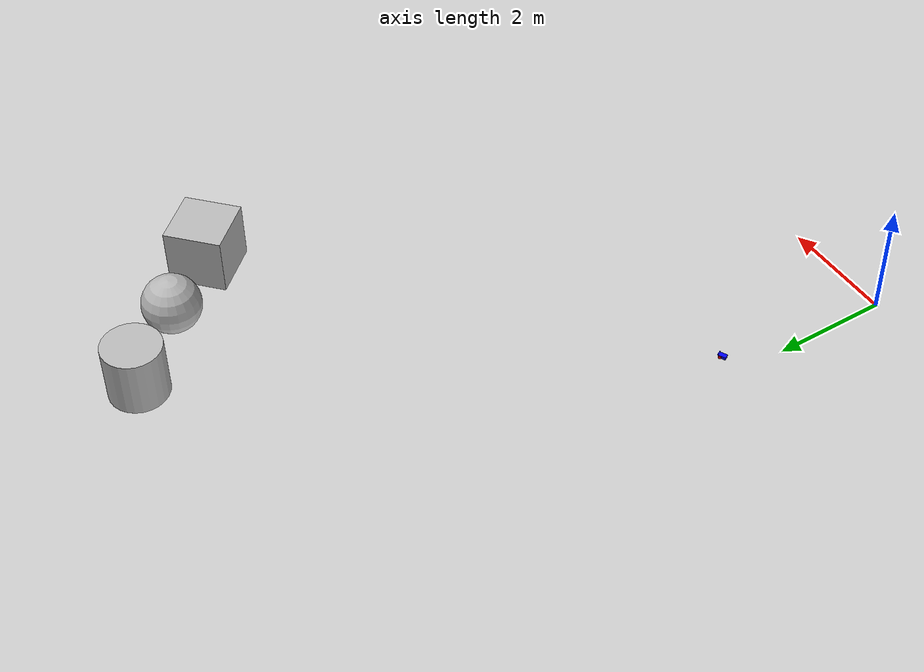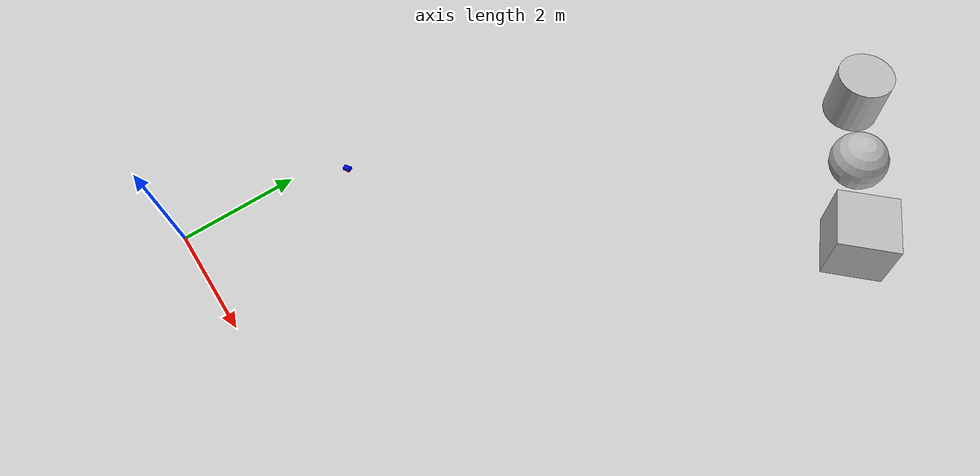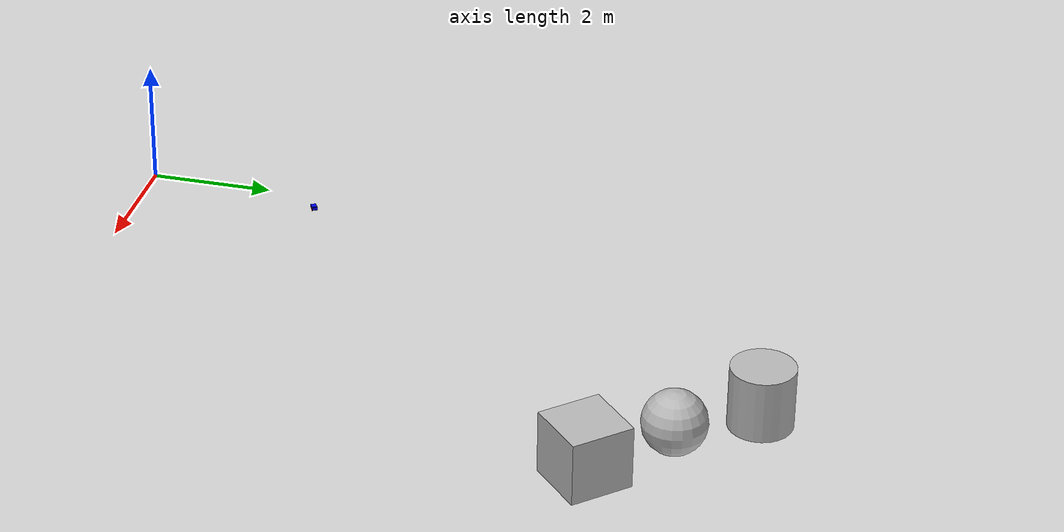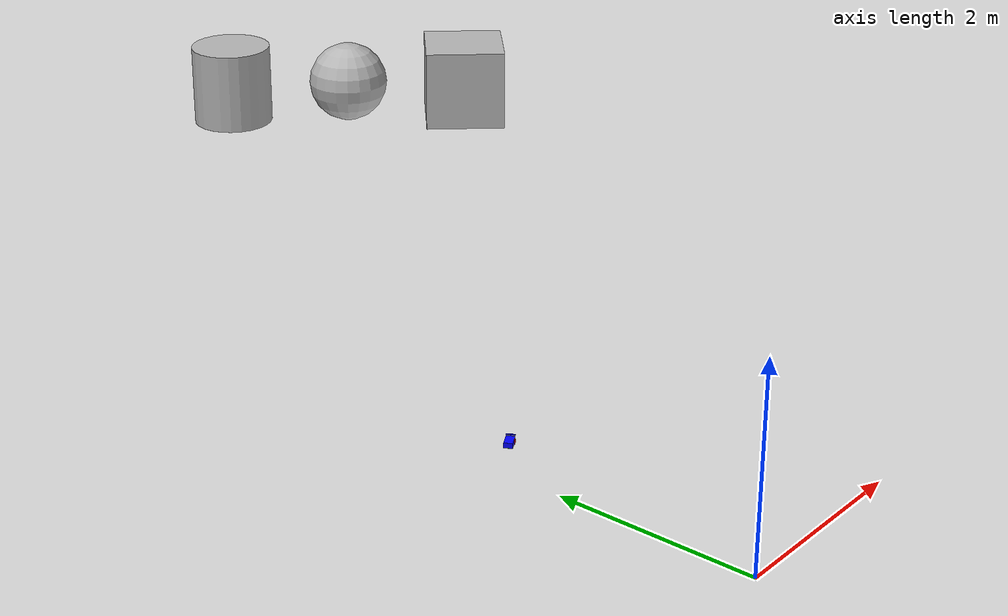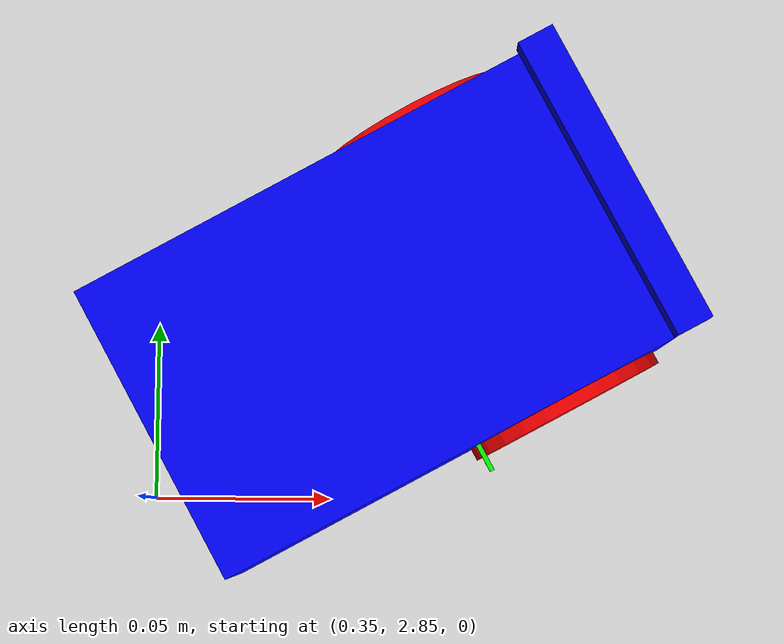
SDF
<sdf version="1.7">
 <world name="default">
  <light name="sun" type="directional">
   <pose>0 0 10 0 -0 0</pose>
   <diffuse>0.8 0.8 0.8 1</diffuse>
   <specular>0.2 0.2 0.2 1</specular>
   <attenuation>
    <range>1000</range>
    <constant>0.9</constant>
    <linear>0.01</linear>
    <quadratic>0.001</quadratic>
   </attenuation>
   <direction>-0.5 0.1 -0.9</direction>
   <spot><inner_angle>0</inner_angle><outer_angle>0</outer_angle><falloff>0</falloff></spot>
  </light>
  <gravity>0 0 -9.8</gravity>
  <magnetic_field>6e-06 2.3e-05 -4.2e-05</magnetic_field>
  <atmosphere type="adiabatic"/>
  <physics type="ode">
   <max_step_size>0.001</max_step_size>
   <real_time_factor>1</real_time_factor>
   <real_time_update_rate>1000</real_time_update_rate>
  </physics>
  <scene><ambient>0.4 0.4 0.4 1</ambient><background>0.7 0.7 0.7 1</background><shadows>1</shadows></scene>
  <audio><device>default</device></audio>
  <spherical_coordinates>
   <surface_model>EARTH_WGS84</surface_model>
   <latitude_deg>0</latitude_deg>
   <longitude_deg>0</longitude_deg>
   <elevation>0</elevation>
   <heading_deg>0</heading_deg>
  </spherical_coordinates>
  <model name="jetson" canonical_link="base_link">
   <pose>0.424273 2.90398 -0.460289 5.1e-05 -0.025445 0.500211</pose>
   <link name="base_link">
    <pose relative_to="__model__">0 0 0.5 0 -0 0</pose>
    <inertial>
     <mass>0.8</mass>
     <inertia><ixx>0.004</ixx><ixy>0</ixy><ixz>0</ixz><iyy>0.004</iyy><iyz>0</iyz><izz>0.004</izz></inertia>
    </inertial>
    <visual name="visual">
     <geometry><box><size>0.133 0.085 0.053</size></box></geometry>
     <material><ambient>0 0 1 1</ambient><diffuse>0 0 1 1</diffuse><specular>0 0 1 1</specular></material>
    </visual>
    <collision name="collision"><geometry><box><size>0.133 0.085 0.053</size></box></geometry></collision>
   </link>
   <link name="camera_link">
    <pose relative_to="base_link">0.07 0 0.0385 0 -0 0</pose>
    <inertial>
     <mass>0.038</mass>
     <inertia><ixx>1e-06</ixx><ixy>0</ixy><ixz>0</ixz><iyy>1e-06</iyy><iyz>0</iyz><izz>1e-06</izz></inertia>
    </inertial>
    <visual name="visual">
     <geometry><box><size>0.01 0.085 0.01</size></box></geometry>
     <material><ambient>0 0 1 1</ambient><diffuse>0 0 1 1</diffuse><specular>0 0 1 1</specular></material>
    </visual>
    <collision name="collision"><geometry><box><size>0.01 0.085 0.01</size></box></geometry></collision>
    <sensor name="cameraLeft" type="camera">
     <pose relative_to="camera_chassis">0 0.03649 0 0 -0 0</pose>
     <always_on>1</always_on>
     <update_rate>4</update_rate>
     <visualize>1</visualize>
     <topic>camera/left/</topic>
     <camera>
      <horizontal_fov>2.70526</horizontal_fov>
      <image><width>500</width><height>300</height><format>L8</format></image>
      <clip><near>0.1</near><far>100</far></clip>
      <lens>
       <intrinsics>
        <fx>307.99879313442784</fx>
        <fy>328.57751082369407</fy>
        <cx>280.24657373225784</cx>
        <cy>134.9335316514946</cy>
        <s>0</s>
       </intrinsics>
       <projection>
        <p_fx>312.8884288345382</p_fx>
        <p_fy>312.8884288345382</p_fy>
        <p_cx>312.28302001953125</p_cx>
        <p_cy>135.72957611083984</p_cy>
        <tx>0.0</tx>
        <ty>0.0</ty>
       </projection>
      </lens>
     </camera>
     <plugin name="camera_left_controller" filename="libgazebo_ros_camera.so">
      <camera_name>cameraLeft</camera_name>
      <frame_name>camera_left</frame_name>
      <hack_baseline>0.07298</hack_baseline>
      <min_depth>0.001</min_depth>
      <max_depth>5.0</max_depth>
     </plugin>
    </sensor>
    <sensor name="cameraRight" type="camera">
     <pose relative_to="camera_chassis">0.0665 -0.03649 0.0395 0 -0 0</pose>
     <always_on>1</always_on>
     <update_rate>4</update_rate>
     <visualize>1</visualize>
     <topic>camera/right/</topic>
     <camera>
      <horizontal_fov>2.70526</horizontal_fov>
      <image><width>500</width><height>300</height><format>L8</format></image>
      <clip><near>0.1</near><far>100</far></clip>
      <lens>
       <intrinsics>
        <fx>307.1754049460059</fx>
        <fy>328.803046449949</fy>
        <cx>265.74658118131305</cx>
        <cy>141.73334383034592</cy>
        <s>0</s>
       </intrinsics>
       <projection>
        <p_fx>312.8884288345382</p_fx>
        <p_fy>312.8884288345382</p_fy>
        <p_cx>312.28302001953125</p_cx>
        <p_cy>135.72957611083984</p_cy>
        <tx>-22.834775948524072</tx>
        <ty>0.0</ty>
       </projection>
      </lens>
     </camera>
     <plugin name="camera_right_controller" filename="libgazebo_ros_camera.so">
      <camera_name>cameraRight</camera_name>
      <frame_name>camera_right</frame_name>
      <hack_baseline>0.07298</hack_baseline>
      <min_depth>0.001</min_depth>
      <max_depth>5.0</max_depth>
     </plugin>
    </sensor>
   </link>
   <link name="imu_link">
    <pose relative_to="base_link">0.0083 -0.04141 0.0077 0 0 1.57079632679</pose>
    <inertial>
     <mass>0.00130</mass>
     <inertia><ixx>1e-06</ixx><ixy>0</ixy><ixz>0</ixz><iyy>1e-06</iyy><iyz>0</iyz><izz>1e-06</izz></inertia>
    </inertial>
    <visual name="visual">
     <geometry><box><size>0.018 0.0013 0.0012</size></box></geometry>
     <material><ambient>0 1 0 1</ambient><diffuse>0 1 0 1</diffuse><specular>0 1 0 1</specular></material>
    </visual>
    <collision name="collision"><geometry><box><size>0.0018 0.0013 0.0012</size></box></geometry></collision>
    <sensor name="imu_jetson" type="imu">
     <always_on>true</always_on>
     <update_rate>50</update_rate>
     <imu>
      <angular_velocity>
       <x><noise type="gaussian"><mean>0.0</mean><stddev>2e-4</stddev></noise></x>
       <y><noise type="gaussian"><mean>0.0</mean><stddev>2e-4</stddev></noise></y>
       <z><noise type="gaussian"><mean>0.0</mean><stddev>2e-4</stddev></noise></z>
      </angular_velocity>
      <linear_acceleration>
       <x><noise type="gaussian"><mean>0.0</mean><stddev>1.7e-2</stddev></noise></x>
       <y><noise type="gaussian"><mean>0.0</mean><stddev>1.7e-2</stddev></noise></y>
       <z><noise type="gaussian"><mean>0.0</mean><stddev>1.7e-2</stddev></noise></z>
      </linear_acceleration>
     </imu>
     <plugin name="imu_jetson" filename="libgazebo_ros_imu.so">
      <initial_orientation_as_reference>false</initial_orientation_as_reference>
      <ros><remapping>~/out:=/imu/data</remapping></ros>
     </plugin>
    </sensor>
   </link>
   <link name="leftWheel">
    <pose relative_to="base_link">0.035 0.044 -0.012 -1.5707 0 0</pose>
    <inertial>
     <mass>0.017</mass>
     <inertia><ixx>1e-06</ixx><ixy>0</ixy><ixz>0</ixz><iyy>1e-06</iyy><iyz>0</iyz><izz>1e-06</izz></inertia>
    </inertial>
    <visual name="visual">
     <geometry><cylinder><radius>0.0285</radius><length>0.004</length></cylinder></geometry>
     <material><ambient>1 0 0 1</ambient><diffuse>1 0 0 1</diffuse><specular>1 0 0 1</specular></material>
    </visual>
    <collision name="collision">
     <geometry>
      <cylinder><radius>0.0285</radius><length>0.004</length></cylinder>
      <surface><friction><ode><mu>0.8</mu><mu2>0.8</mu2></ode></friction></surface>
     </geometry>
    </collision>
   </link>
   <link name="rightWheel">
    <pose relative_to="base_link">0.035 -0.044 -0.012 -1.5707 0 0</pose>
    <inertial>
     <mass>0.017</mass>
     <inertia><ixx>2e-05</ixx><ixy>0</ixy><ixz>0</ixz><iyy>2e-05</iyy><iyz>0</iyz><izz>4.1e-05</izz></inertia>
    </inertial>
    <visual name="visual">
     <geometry>
      <cylinder><radius>0.0285</radius><length>0.004</length></cylinder>
      <surface><friction><ode><mu>0.8</mu><mu2>0.8</mu2></ode></friction></surface>
     </geometry>
     <material><ambient>1 0 0 1</ambient><diffuse>1 0 0 1</diffuse><specular>1 0 0 1</specular></material>
    </visual>
    <collision name="collision">
     <geometry>
      <cylinder><radius>0.0285</radius><length>0.004</length></cylinder>
      <surface><friction><ode><mu>0.8</mu><mu2>0.8</mu2></ode></friction></surface>
     </geometry>
    </collision>
   </link>
   <link name="caster">
    <pose relative_to="base_link">-0.05 0 -0.0271 0 -0 0</pose>
    <inertial>
     <mass>0.005</mass>
     <inertia><ixx>1e-06</ixx><ixy>0</ixy><ixz>0</ixz><iyy>1e-06</iyy><iyz>0</iyz><izz>1e-06</izz></inertia>
    </inertial>
    <visual name="visual">
     <geometry><sphere><radius>0.0113</radius></sphere></geometry>
     <material><ambient>0 1 0 1</ambient><diffuse>0 1 0 1</diffuse><specular>0 1 0 1</specular></material>
    </visual>
    <collision name="collision"><geometry><sphere><radius>0.0113</radius></sphere></geometry></collision>
   </link>
   <joint name="cam_joint" type="fixed">
    <pose relative_to="base_link">0 0 0 0 -0 0</pose>
    <parent>base_link</parent>
    <child>camera_link</child>
    <axis>
     <xyz expressed_in="__model__">1 0 0</xyz>
     <limit><lower>-1.79769e+308</lower><upper>1.79769e+308</upper></limit>
    </axis>
   </joint>
   <joint name="leftWheel_joint" type="revolute">
    <pose relative_to="leftWheel">0 0 0 0 -0 0</pose>
    <parent>base_link</parent>
    <child>leftWheel</child>
    <axis>
     <xyz expressed_in="__model__">0 1 0</xyz>
     <limit><lower>-1.79769e+308</lower><upper>1.79769e+308</upper></limit>
     <dynamics><spring_reference>0</spring_reference><spring_stiffness>0</spring_stiffness></dynamics>
    </axis>
   </joint>
   <joint name="rightWheel_joint" type="revolute">
    <pose relative_to="rightWheel">0 0 0 0 -0 0</pose>
    <parent>base_link</parent>
    <child>rightWheel</child>
    <axis>
     <xyz expressed_in="__model__">0 1 0</xyz>
     <limit><lower>-1.79769e+308</lower><upper>1.79769e+308</upper></limit>
     <dynamics><spring_reference>0</spring_reference><spring_stiffness>0</spring_stiffness></dynamics>
    </axis>
   </joint>
   <joint name="caster_wheel" type="ball"><parent>base_link</parent><child>caster</child></joint>
   <joint name="imu_joint" type="fixed">
    <parent>base_link</parent>
    <child>imu_link</child>
    <origin xyz="0.0083 -0.04141 0.0077"/>
   </joint>
   <plugin name="differential_drive_controller" filename="libgazebo_ros_diff_drive.so">
    <left_joint>leftWheel_joint</left_joint>
    <right_joint>rightWheel_joint</right_joint>
    <wheel_separation>0.08</wheel_separation>
    <wheel_diameter>0.057</wheel_diameter>
    <max_wheel_acceleration>1</max_wheel_acceleration>
    <max_wheel_torque>2</max_wheel_torque>
    <command_topic>cmd_vel</command_topic>
   </plugin>
  </model>
  <light name="user_directional_light_0" type="directional">
   <pose>33.4111 35.1657 1 0 -0 0</pose>
   <diffuse>0.5 0.5 0.5 1</diffuse>
   <specular>0.1 0.1 0.1 1</specular>
   <direction>0.1 0.1 -0.9</direction>
   <attenuation>
    <range>20</range>
    <constant>0.5</constant>
    <linear>0.01</linear>
    <quadratic>0.001</quadratic>
   </attenuation>
  </light>
  <light name="user_directional_light_1" type="directional">
   <pose>36.5096 -39.8155 1 0 -0 0</pose>
   <diffuse>0.5 0.5 0.5 1</diffuse>
   <specular>0.1 0.1 0.1 1</specular>
   <direction>0.1 0.1 -0.9</direction>
   <attenuation>
    <range>20</range>
    <constant>0.5</constant>
    <linear>0.01</linear>
    <quadratic>0.001</quadratic>
   </attenuation>
  </light>
  <light name="user_directional_light_2" type="directional">
   <pose>-36.7548 34.1905 1 0 -0 0</pose>
   <diffuse>0.5 0.5 0.5 1</diffuse>
   <specular>0.1 0.1 0.1 1</specular>
   <direction>0.1 0.1 -0.9</direction>
   <attenuation>
    <range>20</range>
    <constant>0.5</constant>
    <linear>0.01</linear>
    <quadratic>0.001</quadratic>
   </attenuation>
  </light>
  <light name="user_directional_light_3" type="directional">
   <pose>-41.0801 -40.7492 1 0 -0 0</pose>
   <diffuse>0.5 0.5 0.5 1</diffuse>
   <specular>0.1 0.1 0.1 1</specular>
   <direction>0.1 0.1 -0.9</direction>
   <attenuation>
    <range>20</range>
    <constant>0.5</constant>
    <linear>0.01</linear>
    <quadratic>0.001</quadratic>
   </attenuation>
  </light>
  <light name="user_directional_light_4" type="directional">
   <pose>-0.135201 -0.045924 1 0 -0 0</pose>
   <diffuse>0.5 0.5 0.5 1</diffuse>
   <specular>0.1 0.1 0.1 1</specular>
   <direction>0.1 0.1 -0.9</direction>
   <attenuation>
    <range>20</range>
    <constant>0.5</constant>
    <linear>0.01</linear>
    <quadratic>0.001</quadratic>
   </attenuation>
  </light>
  <model name="textured_shapes">
   <pose>5.84703 9.99174 0.5 0 -0 0.746349</pose>
   <link name="box">
    <pose>0 -1.5 0 0 -0 0</pose>
    <collision name="collision"><geometry><box><size>1 1 1</size></box></geometry></collision>
    <visual name="visual">
     <geometry><box><size>1 1 1</size></box></geometry>
     <material>
      <script>
       <uri>model://textured_shapes/materials/scripts</uri>
       <uri>model://textured_shapes/materials/textures</uri>
       <name>TexturedShape/Squares</name>
      </script>
     </material>
    </visual>
    <inertial>
     <inertia><ixx>1</ixx><ixy>0</ixy><ixz>0</ixz><iyy>1</iyy><iyz>0</iyz><izz>1</izz></inertia>
     <mass>1</mass>
    </inertial>
   </link>
   <link name="sphere">
    <collision name="collision"><geometry><sphere><radius>0.5</radius></sphere></geometry></collision>
    <visual name="visual">
     <geometry><sphere><radius>0.5</radius></sphere></geometry>
     <material>
      <script>
       <uri>model://textured_shapes/materials/scripts</uri>
       <uri>model://textured_shapes/materials/textures</uri>
       <name>TexturedShape/Squares</name>
      </script>
     </material>
    </visual>
    <inertial>
     <inertia><ixx>1</ixx><ixy>0</ixy><ixz>0</ixz><iyy>1</iyy><iyz>0</iyz><izz>1</izz></inertia>
     <mass>1</mass>
    </inertial>
   </link>
   <link name="cylinder">
    <pose>0 1.5 0 0 -0 0</pose>
    <collision name="collision">
     <geometry><cylinder><radius>0.5</radius><length>1</length></cylinder></geometry>
    </collision>
    <visual name="visual">
     <geometry><cylinder><radius>0.5</radius><length>1</length></cylinder></geometry>
     <material>
      <script>
       <uri>model://textured_shapes/materials/scripts</uri>
       <uri>model://textured_shapes/materials/textures</uri>
       <name>TexturedShape/Squares</name>
      </script>
     </material>
    </visual>
    <inertial>
     <inertia><ixx>1</ixx><ixy>0</ixy><ixz>0</ixz><iyy>1</iyy><iyz>0</iyz><izz>1</izz></inertia>
     <mass>1</mass>
    </inertial>
   </link>
  </model>
 </world>
</sdf>
